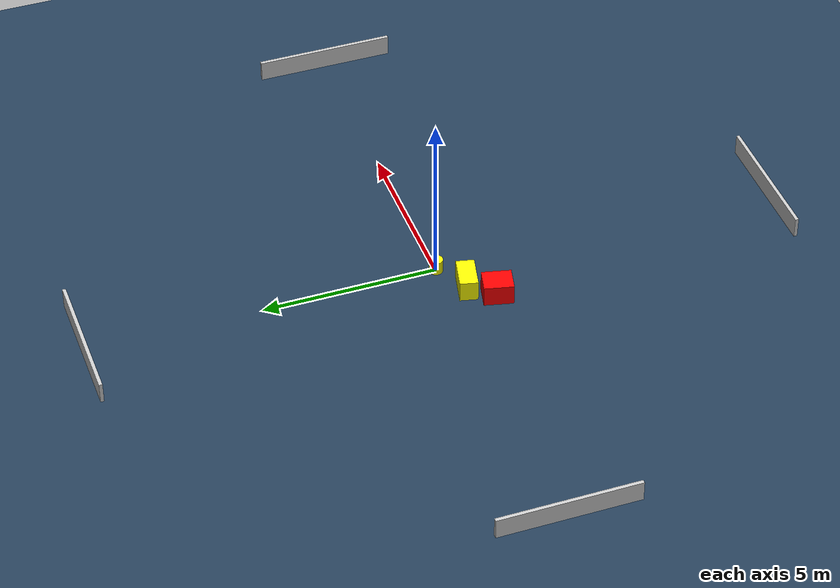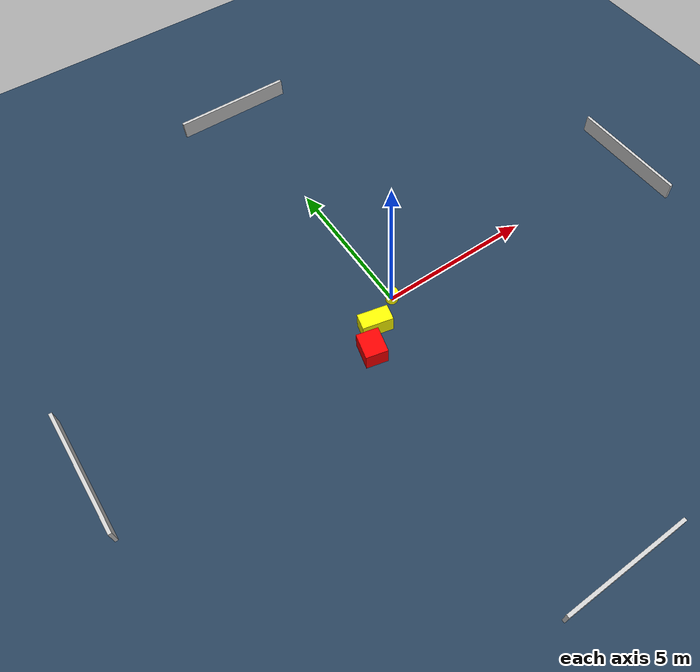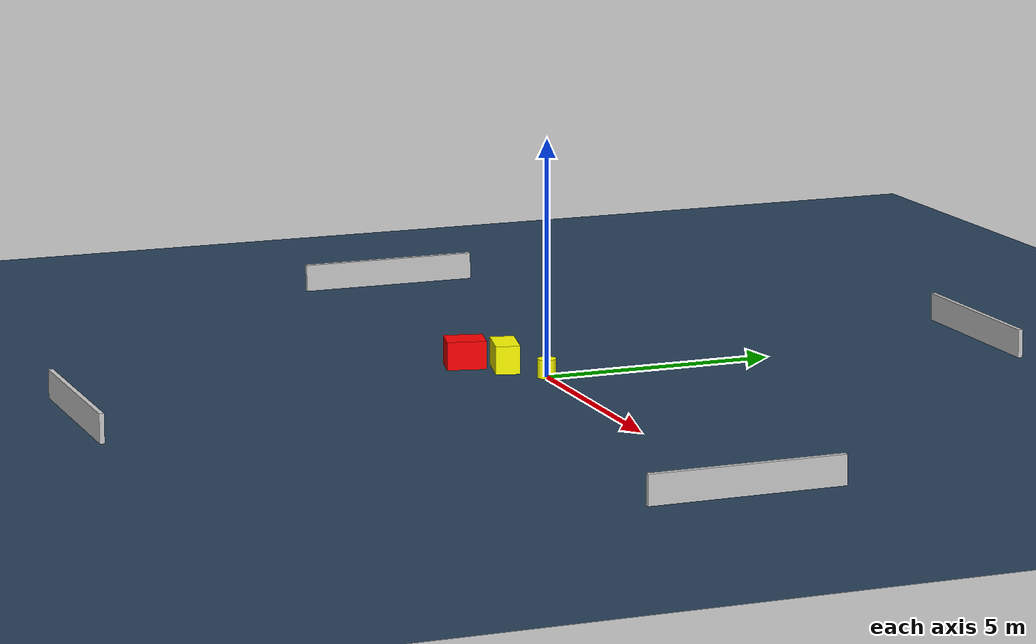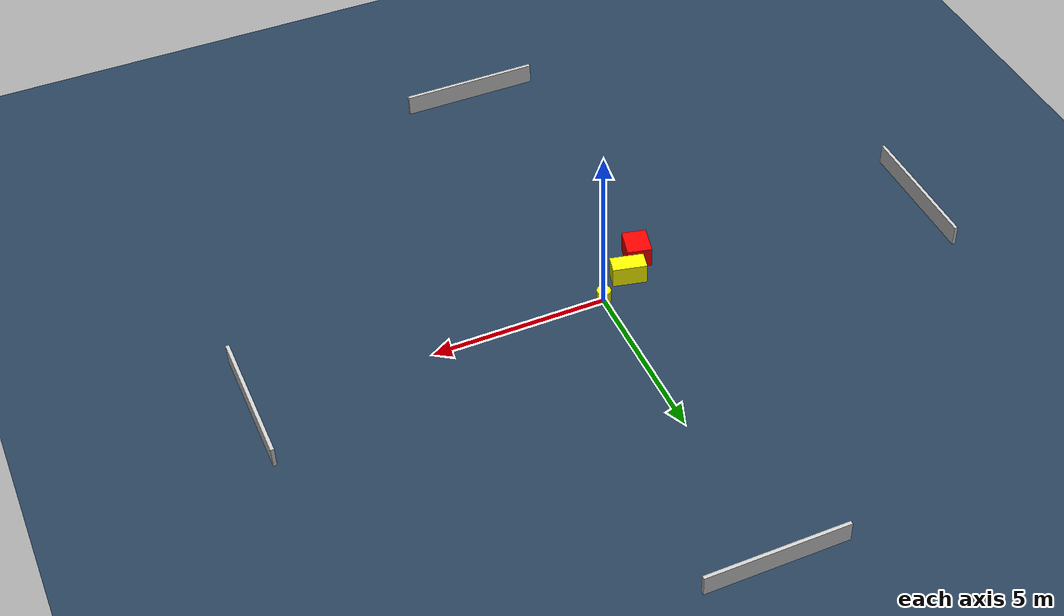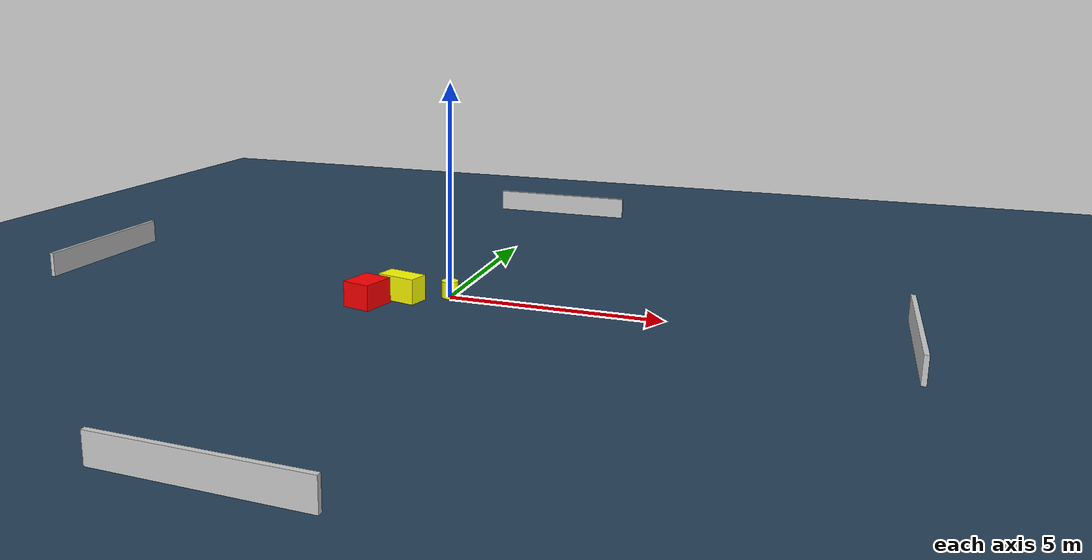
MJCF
<?xml version="1.0" ?>
<mujoco model="generated_environment">
  <option timestep="0.01" integrator="RK4" cone="elliptic"/>
  <default>
    <geom density="1"/>
  </default>
  <asset>
    <texture builtin="gradient" height="3072" name="skybox" rgb1="0.3 0.5 0.7" rgb2="0 0 0" type="skybox" width="512"/>
    <texture builtin="checker" height="300" name="groundplane" rgb1="0.2 0.3 0.4" rgb2="0.1 0.2 0.3" type="2d" width="300"/>
    <material name="groundplane" reflectance="0.2" texrepeat="5 5" texture="groundplane"/>
  </asset>
  <worldbody>
    <light dir="0 0 -1" directional="true" pos="0 0 1.5"/>
    <geom condim="3" friction="0.5 0.005 0.001" material="groundplane" name="floor" pos="0 0 0" size="0 0 0.05" type="plane"/>
    <body name="walls">
      <geom name="wall_1" condim="4" pos="-10.0 0.0 0.3" rgba="0.800000011920929 0.800000011920929 0.800000011920929 1.0" size="0.05 2.0 0.3" type="box"/>
      <geom name="wall_2" condim="4" pos="10.0 0.0 0.3" rgba="0.800000011920929 0.800000011920929 0.800000011920929 1.0" size="0.05 2.0 0.3" type="box"/>
      <geom name="wall_3" condim="4" pos="0.0 -10.0 0.3" rgba="0.800000011920929 0.800000011920929 0.800000011920929 1.0" size="2.0 0.05 0.3" type="box"/>
      <geom name="wall_4" condim="4" pos="0.0 10.0 0.3" rgba="0.800000011920929 0.800000011920929 0.800000011920929 1.0" size="2.0 0.05 0.3" type="box"/>
    </body>
    <body name="robot">
      <joint name="joint_x" type="slide" pos="0 0 0" axis="1 0 0"/>
      <joint name="joint_y" type="slide" pos="0 0 0" axis="0 1 0"/>
      <geom name="robot" type="cylinder" pos="0.0 0.0 0.2" size="0.2 0.2 0.0" mass="5.0" friction="1.0 0.005 0.0001" condim="4" rgba="1.0 1.0 0.0 1.0"/>
    </body>
    <body name="obstacle_1_movable">
      <geom name="obstacle_1_movable" condim="4" pos="-0.9935647010030926 -0.5506215301802198 0.3" euler="0 0 166.9823181277745" friction="0.0 0.005 0.001" rgba="1.0 1.0 0.0 1.0" size="0.48330061658736745 0.2578296129073339 0.3" type="box" mass="0.1"/>
      <joint type="free"/>
    </body>
    <body name="obstacle_2_static">
      <geom name="obstacle_2_static" condim="4" pos="-1.5668705961139335 -1.2297131263602172 0.3" euler="0 0 346.7312834706833" friction="0.0 0.005 0.001" rgba="1.0 0.0 0.0 1.0" size="0.3486008651674392 0.4178045224535738 0.3" type="box"/>
    </body>
  </worldbody>
  <actuator>
    <motor name="actuator_x" joint="joint_x" gear="1" ctrlrange="-1 1"/>
    <motor name="actuator_y" joint="joint_y" gear="1" ctrlrange="-1 1"/>
  </actuator>
</mujoco>
